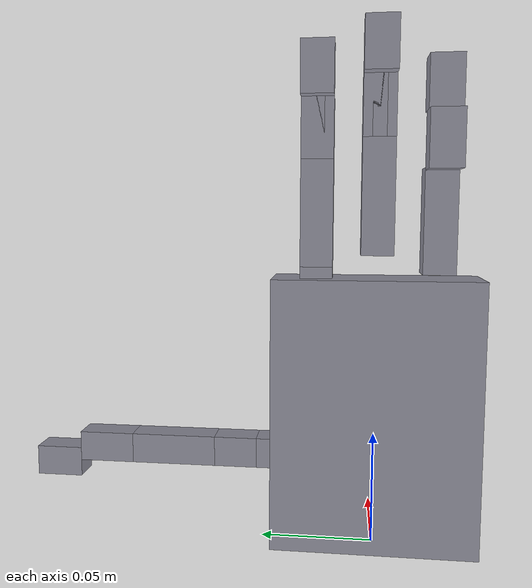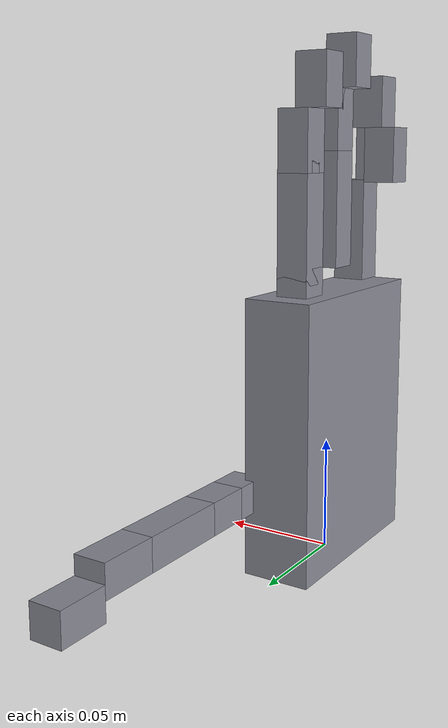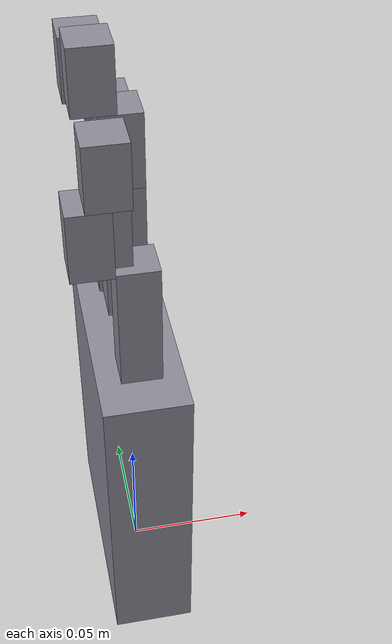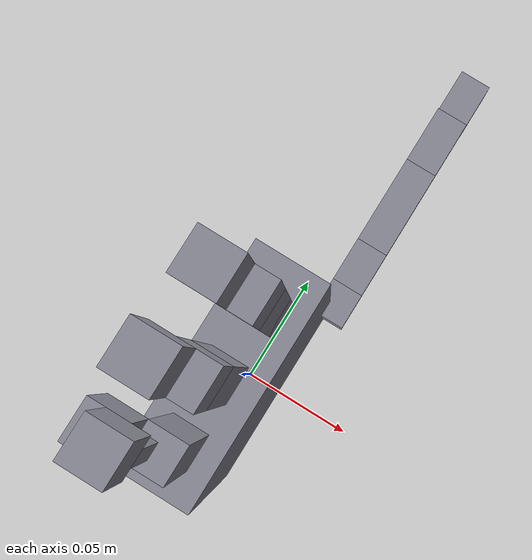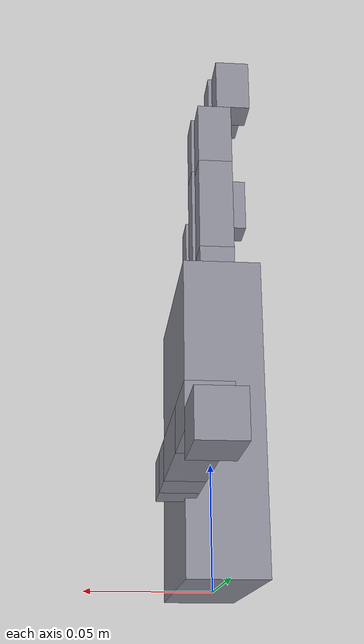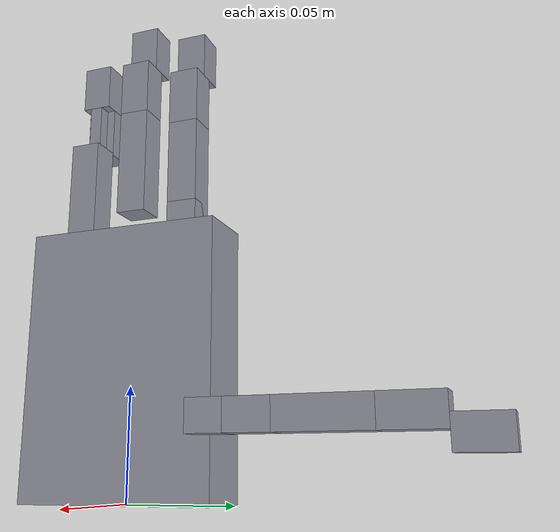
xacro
<?xml version="1.0"?>
<robot xmlns:xacro="http://www.ros.org/wiki/xacro" name="p1b_surrogate">

  <xacro:property name="half_pi" value="1.5707963267948966"/>
  <xacro:property name="act_effort" value="3.0"/>
  <xacro:property name="act_velocity" value="10.384"/>

  <xacro:property name="fb_oa_s" value="0.0"/>
  <xacro:property name="fb_oa_t" value="-0.004"/>
  <xacro:property name="fb_d_s" value="0.026"/>
  <xacro:property name="fb_c_s" value="0.026"/>
  <xacro:property name="fb_c_t" value="-0.008"/>
  <!-- Fingertip bracket, from C in (s, t). -->
  <xacro:property name="tip_s" value="0.022"/>
  <xacro:property name="tip_t" value="0.006"/>

  <material name="surrogate_grey">
    <color rgba="0.55 0.55 0.6 1.0"/>
  </material>

  <!-- A moving link: a box of size (sx, sy, sz) centred at (cx, cy, cz), its
       inertia the solid box's. -->
  <xacro:macro name="box_link" params="name m sx sy sz cx:=0 cy:=0 cz:=0">
    <link name="${name}">
      <visual>
        <origin xyz="${cx} ${cy} ${cz}" rpy="0 0 0"/>
        <geometry><box size="${sx} ${sy} ${sz}"/></geometry>
        <material name="surrogate_grey"/>
      </visual>
      <collision>
        <origin xyz="${cx} ${cy} ${cz}" rpy="0 0 0"/>
        <geometry><box size="${sx} ${sy} ${sz}"/></geometry>
      </collision>
      <inertial>
        <origin xyz="${cx} ${cy} ${cz}" rpy="0 0 0"/>
        <mass value="${m}"/>
        <inertia ixx="${m * (sy * sy + sz * sz) / 12.0}" ixy="0" ixz="0"
                 iyy="${m * (sx * sx + sz * sz) / 12.0}" iyz="0"
                 izz="${m * (sx * sx + sy * sy) / 12.0}"/>
      </inertial>
    </link>
  </xacro:macro>

  <!-- A link along the finger: length `l` along s, the box thin across.
       (ux uy uz) is s in the link frame, (vx vy vz) is t; each a unit axis. -->
  <xacro:macro name="segment" params="name m l ux uy uz vx vy vz w:=0.014">
    <xacro:box_link name="${name}" m="${m}"
        sx="${ux * ux * l + (1 - ux * ux) * w}"
        sy="${uy * uy * l + (1 - uy * uy) * w}"
        sz="${uz * uz * l + (1 - uz * uz) * w}"
        cx="${ux * l / 2}" cy="${uy * l / 2}" cz="${uz * l / 2}"/>
  </xacro:macro>

  <xacro:macro name="revolute" params="name parent child x y z axis lower upper">
    <joint name="${name}" type="revolute">
      <parent link="${parent}"/>
      <child link="${child}"/>
      <origin xyz="${x} ${y} ${z}" rpy="0 0 0"/>
      <axis xyz="${axis}"/>
      <limit lower="${lower}" upper="${upper}" effort="${act_effort}" velocity="${act_velocity}"/>
    </joint>
  </xacro:macro>

  <xacro:macro name="passive" params="name parent child x y z axis">
    <joint name="${name}" type="revolute">
      <parent link="${parent}"/>
      <child link="${child}"/>
      <origin xyz="${x} ${y} ${z}" rpy="0 0 0"/>
      <axis xyz="${axis}"/>
      <limit lower="0.0" upper="0.0" effort="0.0" velocity="0.0"/>
    </joint>
  </xacro:macro>

  <xacro:macro name="fixed_frame" params="joint parent child x y z rpy:='0 0 0'">
    <link name="${child}"/>
    <joint name="${joint}" type="fixed">
      <parent link="${parent}"/>
      <child link="${child}"/>
      <origin xyz="${x} ${y} ${z}" rpy="${rpy}"/>
    </joint>
  </xacro:macro>

  <xacro:macro name="distal_four_bar"
      params="f parent link_b link_a lp axis ux uy uz vx vy vz bracket_rpy m_b m_a m_tip">
    <xacro:segment name="${link_b}" m="${m_b}" l="${fb_d_s}"
        ux="${ux}" uy="${uy}" uz="${uz}" vx="${vx}" vy="${vy}" vz="${vz}"/>
    <xacro:segment name="${link_a}" m="${m_a}" l="${fb_c_s - fb_oa_s}" w="0.006"
        ux="${ux}" uy="${uy}" uz="${uz}" vx="${vx}" vy="${vy}" vz="${vz}"/>
    <xacro:segment name="l_${f}_tip_link" m="${m_tip}" l="${tip_s}"
        ux="${ux}" uy="${uy}" uz="${uz}" vx="${vx}" vy="${vy}" vz="${vz}"/>

    <xacro:revolute name="${f}_dip_fe_joint" parent="${parent}" child="${link_b}"
        x="${lp * ux}" y="${lp * uy}" z="${lp * uz}"
        axis="${axis}" lower="${-half_pi}" upper="0.0"/>
    <xacro:passive name="${f}_dip_a_joint_passive" parent="${parent}" child="${link_a}"
        x="${(lp + fb_oa_s) * ux + fb_oa_t * vx}"
        y="${(lp + fb_oa_s) * uy + fb_oa_t * vy}"
        z="${(lp + fb_oa_s) * uz + fb_oa_t * vz}" axis="${axis}"/>
    <xacro:passive name="${f}_pip_a_joint_passive" parent="${link_a}" child="l_${f}_tip_link"
        x="${(fb_c_s - fb_oa_s) * ux + (fb_c_t - fb_oa_t) * vx}"
        y="${(fb_c_s - fb_oa_s) * uy + (fb_c_t - fb_oa_t) * vy}"
        z="${(fb_c_s - fb_oa_s) * uz + (fb_c_t - fb_oa_t) * vz}" axis="${axis}"/>
    <!-- D − C on the coupler, D − O_b on the crank: the same point at q = 0. -->
    <xacro:fixed_frame joint="${f}_pip_b_joint_constraint_ab" parent="l_${f}_tip_link"
        child="l_${f}_tip_constraint_ab"
        x="${(fb_d_s - fb_c_s) * ux - fb_c_t * vx}"
        y="${(fb_d_s - fb_c_s) * uy - fb_c_t * vy}"
        z="${(fb_d_s - fb_c_s) * uz - fb_c_t * vz}"/>
    <xacro:fixed_frame joint="${f}_pip_b_joint_constraint_ba" parent="${link_b}"
        child="l_${f}_tip_constraint_ba"
        x="${fb_d_s * ux}" y="${fb_d_s * uy}" z="${fb_d_s * uz}"/>
    <xacro:fixed_frame joint="${f}_tip_bracket_joint_fixed" parent="l_${f}_tip_link"
        child="l_${f}_tip_bracket"
        x="${tip_s * ux + tip_t * vx}" y="${tip_s * uy + tip_t * vy}"
        z="${tip_s * uz + tip_t * vz}" rpy="${bracket_rpy}"/>
  </xacro:macro>

  <!-- ── Palm ──────────────────────────────────────────────────────────── -->
  <link name="base_adapter"/>
  <xacro:box_link name="l_palm_link" m="0.55" sx="0.09" sy="0.12" sz="0.03" cy="0.06"/>
  <joint name="base_to_l_palm_link" type="fixed">
    <parent link="base_adapter"/>
    <child link="l_palm_link"/>
    <origin xyz="0 0 0" rpy="${half_pi} 0 ${half_pi}"/>
  </joint>

  <!-- ── Index: abduction, flexion, distal four-bar (plane y-z) ─────────── -->
  <xacro:box_link name="l_index_mcp_link" m="0.02" sx="0.014" sy="0.014" sz="0.014"/>
  <xacro:revolute name="index_mcp_aa_joint" parent="l_palm_link" child="l_index_mcp_link"
      x="0.026" y="0.125" z="0.0" axis="0 0 -1" lower="-0.34906585" upper="0.523598776"/>
  <xacro:segment name="l_index_dip_link" m="0.05" l="0.046" ux="0" uy="1" uz="0" vx="0" vy="0" vz="1"/>
  <xacro:revolute name="index_mcp_fe_joint" parent="l_index_mcp_link" child="l_index_dip_link"
      x="0" y="0" z="0" axis="-1 0 0" lower="${-half_pi}" upper="0.0"/>
  <xacro:distal_four_bar f="index" parent="l_index_dip_link"
      link_b="l_index_pip_linkage_b" link_a="l_index_pip_linkage_a" lp="0.046"
      axis="-1 0 0" ux="0" uy="1" uz="0" vx="0" vy="0" vz="1"
      bracket_rpy="0 0 ${half_pi}" m_b="0.012" m_a="0.003" m_tip="0.015"/>

  <!-- ── Middle: flexion, distal four-bar (plane y-z) ──────────────────── -->
  <xacro:segment name="l_middle_mcp_link" m="0.05" l="0.050" ux="0" uy="1" uz="0" vx="0" vy="0" vz="1"/>
  <xacro:revolute name="middle_mcp_fe_joint" parent="l_palm_link" child="l_middle_mcp_link"
      x="0.0" y="0.130" z="0.0" axis="-1 0 0" lower="${-half_pi}" upper="0.0"/>
  <xacro:distal_four_bar f="middle" parent="l_middle_mcp_link"
      link_b="l_middle_dip_b_link" link_a="l_middle_dip_a_link" lp="0.050"
      axis="-1 0 0" ux="0" uy="1" uz="0" vx="0" vy="0" vz="1"
      bracket_rpy="0 0 ${half_pi}" m_b="0.012" m_a="0.003" m_tip="0.015"/>

  <!-- ── Thumb: three serial joints, distal four-bar (plane x-y, along +x) ── -->
  <xacro:segment name="l_thumb_cmc_link_a" m="0.015" l="0.016" ux="1" uy="0" uz="0" vx="0" vy="1" vz="0"/>
  <xacro:revolute name="thumb_cmc_aa_joint" parent="l_palm_link" child="l_thumb_cmc_link_a"
      x="0.038" y="0.035" z="0.018" axis="0 -1 0" lower="0.0" upper="2.356194487"/>
  <xacro:segment name="l_thumb_cmc_link_b" m="0.025" l="0.020" ux="1" uy="0" uz="0" vx="0" vy="1" vz="0"/>
  <xacro:revolute name="thumb_cmc_fe_joint" parent="l_thumb_cmc_link_a" child="l_thumb_cmc_link_b"
      x="0.016" y="0" z="0" axis="0 0 1" lower="${-half_pi}" upper="${half_pi}"/>
  <xacro:segment name="l_thumb_mcp_link" m="0.06" l="0.040" ux="1" uy="0" uz="0" vx="0" vy="1" vz="0"/>
  <xacro:revolute name="thumb_mcp_joint" parent="l_thumb_cmc_link_b" child="l_thumb_mcp_link"
      x="0.020" y="0" z="0" axis="0 1 0" lower="${-half_pi}" upper="${half_pi}"/>
  <xacro:distal_four_bar f="thumb" parent="l_thumb_mcp_link"
      link_b="l_thumb_dip_link_b" link_a="l_thumb_dip_link_a" lp="0.040"
      axis="0 0 -1" ux="1" uy="0" uz="0" vx="0" vy="1" vz="0"
      bracket_rpy="${-half_pi} 0 ${half_pi}" m_b="0.012" m_a="0.003" m_tip="0.015"/>

  <xacro:property name="r_lp" value="0.045"/>
  <xacro:property name="r_oa1_s" value="0.002"/>
  <xacro:property name="r_oa1_t" value="-0.002"/>
  <xacro:property name="r_p1_s" value="0.044"/>
  <xacro:property name="r_p1_t" value="-0.014"/>
  <xacro:property name="r_oa2_s" value="0.045"/>
  <xacro:property name="r_oa2_t" value="-0.004"/>
  <xacro:property name="r_e_s" value="0.068"/>
  <xacro:property name="r_c2_s" value="0.068"/>
  <xacro:property name="r_c2_t" value="-0.008"/>

  <xacro:segment name="l_ring_pip_linkage_b" m="0.04" l="${r_lp}" ux="0" uy="1" uz="0" vx="0" vy="0" vz="1"/>
  <xacro:segment name="l_ring_pip_linkage_a" m="0.004" l="${r_p1_s - r_oa1_s}" w="0.006"
      ux="0" uy="1" uz="0" vx="0" vy="0" vz="1"/>
  <xacro:segment name="l_ring_dip_linkage_b" m="0.01" l="${r_e_s - r_p1_s}" ux="0" uy="1" uz="0" vx="0" vy="0" vz="1"/>
  <xacro:segment name="l_ring_dip_linkage_a" m="0.003" l="${r_c2_s - r_oa2_s}" w="0.006"
      ux="0" uy="1" uz="0" vx="0" vy="0" vz="1"/>
  <xacro:segment name="l_ring_tip_link" m="0.015" l="${tip_s}" ux="0" uy="1" uz="0" vx="0" vy="0" vz="1"/>

  <xacro:revolute name="ring_mcp_fe_joint" parent="l_palm_link" child="l_ring_pip_linkage_b"
      x="-0.026" y="0.122" z="0.0" axis="-1 0 0" lower="${-half_pi}" upper="0.0"/>
  <xacro:passive name="ring_mcp_a_joint_passive" parent="l_palm_link" child="l_ring_pip_linkage_a"
      x="-0.026" y="${0.122 + r_oa1_s}" z="${r_oa1_t}" axis="-1 0 0"/>
  <xacro:passive name="ring_dip_b_joint_passive" parent="l_ring_pip_linkage_a" child="l_ring_dip_linkage_b"
      x="0" y="${r_p1_s - r_oa1_s}" z="${r_p1_t - r_oa1_t}" axis="-1 0 0"/>
  <xacro:passive name="ring_dip_a_joint_passive" parent="l_ring_pip_linkage_b" child="l_ring_dip_linkage_a"
      x="0" y="${r_oa2_s}" z="${r_oa2_t}" axis="-1 0 0"/>
  <xacro:passive name="ring_pip_a_joint_passive" parent="l_ring_dip_linkage_a" child="l_ring_tip_link"
      x="0" y="${r_c2_s - r_oa2_s}" z="${r_c2_t - r_oa2_t}" axis="-1 0 0"/>
  <!-- ring_pip_loop at D1 = (r_lp, 0): D1 − P1 on dip_linkage_b, D1 − O_b1 on pip_linkage_b. -->
  <xacro:fixed_frame joint="ring_dip_b_joint_constraint_ab" parent="l_ring_dip_linkage_b"
      child="l_ring_pip_b_constraint_ab" x="0" y="${r_lp - r_p1_s}" z="${-r_p1_t}"/>
  <xacro:fixed_frame joint="ring_dip_b_joint_constraint_ba" parent="l_ring_pip_linkage_b"
      child="l_ring_pip_b_constraint_ba" x="0" y="${r_lp}" z="0"/>
  <!-- ring_tip_loop at E = (r_e_s, 0): E − C2 on the tip, E − P1 on dip_linkage_b. -->
  <xacro:fixed_frame joint="ring_pip_b_joint_constraint_ab" parent="l_ring_tip_link"
      child="l_ring_tip_constraint_ab" x="0" y="${r_e_s - r_c2_s}" z="${-r_c2_t}"/>
  <xacro:fixed_frame joint="ring_pip_b_joint_constraint_ba" parent="l_ring_dip_linkage_b"
      child="l_ring_tip_constraint_ba" x="0" y="${r_e_s - r_p1_s}" z="${-r_p1_t}"/>
  <xacro:fixed_frame joint="ring_tip_bracket_joint_fixed" parent="l_ring_tip_link"
      child="l_ring_tip_bracket" x="0" y="${tip_s}" z="${tip_t}" rpy="0 0 ${half_pi}"/>

</robot>
